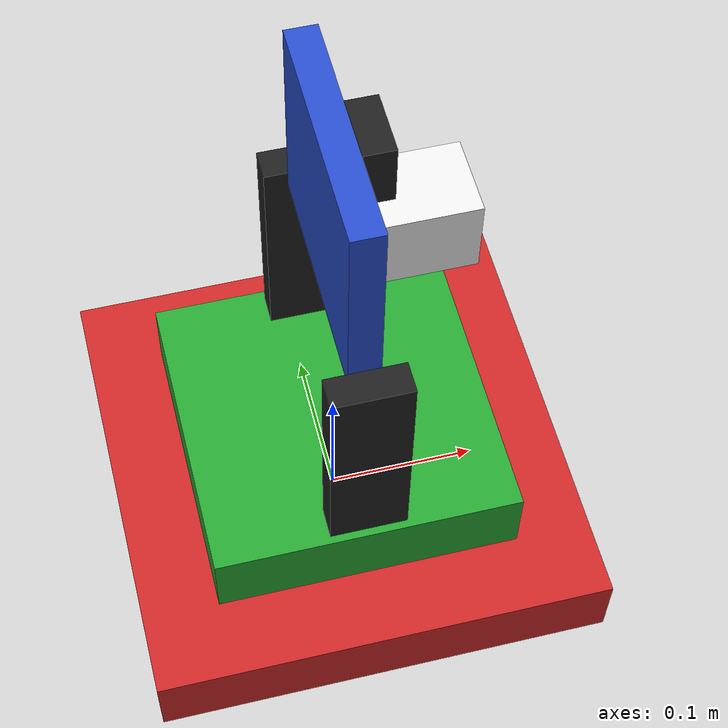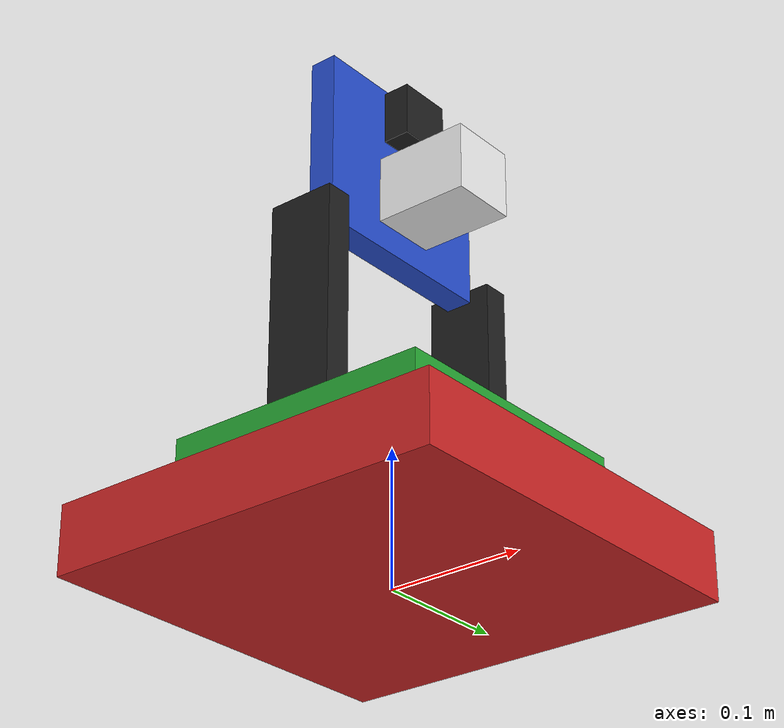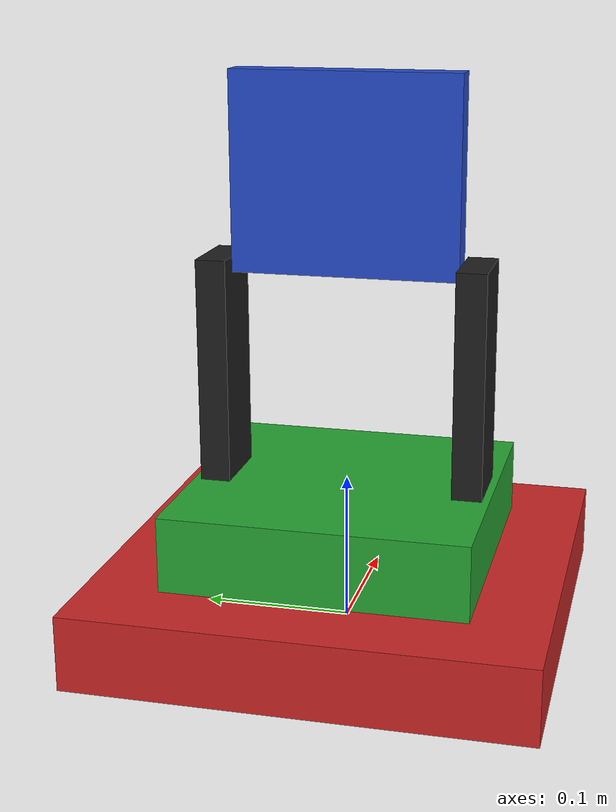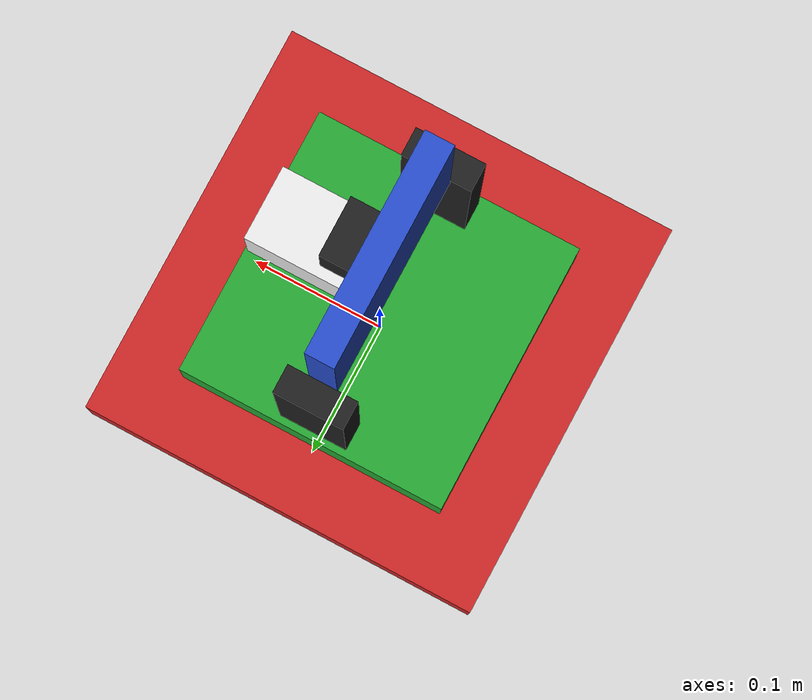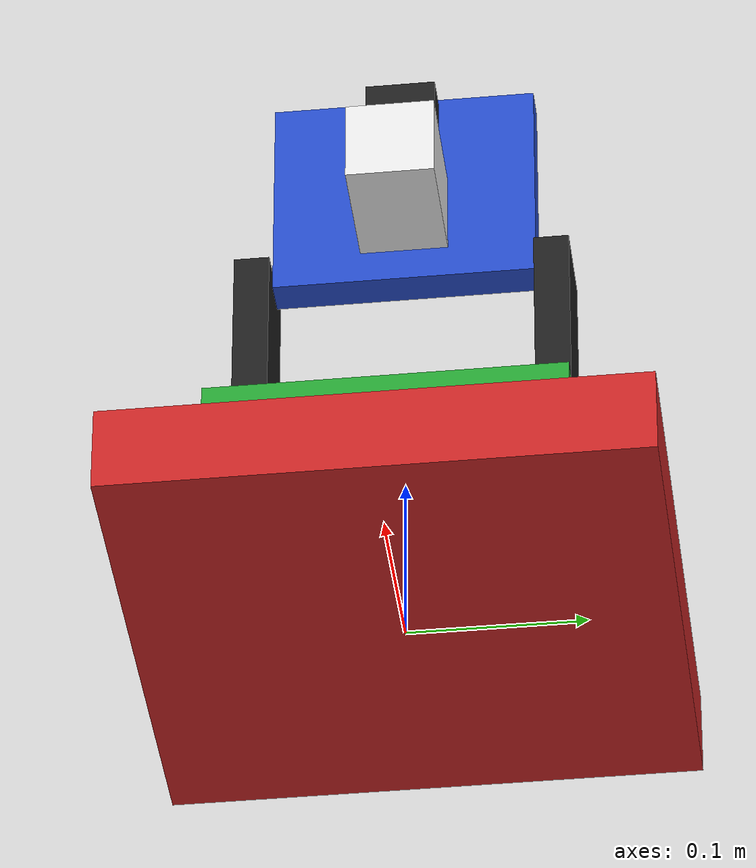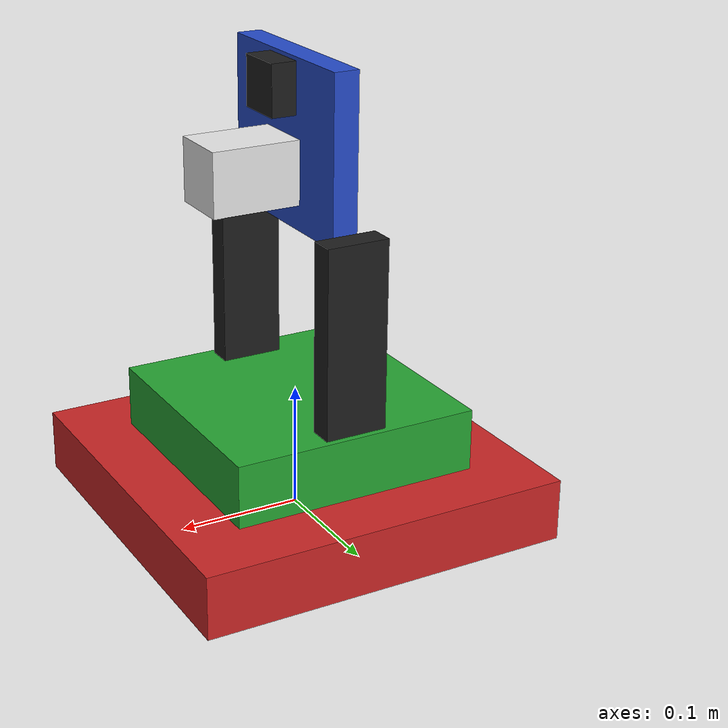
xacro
<?xml version="1.0"?>
<robot xmlns:xacro="http://www.ros.org/wiki/xacro">
    <!-- SPECS -->
    <xacro:property name="base_lx" value="0.3" />
    <xacro:property name="base_ly" value="0.3" />
    <xacro:property name="base_lz" value="0.05" />
    <xacro:property name="base_mass" value="0.8" />

    <xacro:property name="yaw_lx" value="0.2" />
    <xacro:property name="yaw_ly" value="0.2" />
    <xacro:property name="yaw_lz" value="0.05" />
    <xacro:property name="yaw_mass" value="0.2" />

    <xacro:property name="stand_lx" value="0.05" />
    <xacro:property name="stand_ly" value="0.02" />
    <xacro:property name="stand_lz" value="0.15" />
    <xacro:property name="stand_mass" value="0.1" />

    <xacro:property name="pitch_lx" value="0.02" />
    <xacro:property name="pitch_ly" value="0.15" />
    <xacro:property name="pitch_lz" value="0.13" />
    <xacro:property name="pitch_mass" value="0.1" />

    <xacro:property name="muzzle_lx" value="0.07" />
    <xacro:property name="muzzle_ly" value="0.05" />
    <xacro:property name="muzzle_lz" value="0.05" />
    <xacro:property name="muzzle_mass" value="0.02" />

    <xacro:property name="camera_lx" value="0.02" />
    <xacro:property name="camera_ly" value="0.04" />
    <xacro:property name="camera_lz" value="0.04" />
    <!-- END_SPECS -->

    <link name="footprint" />

    <link name="base_link">

        <visual>
            <origin xyz="0 0 0" rpy="0 0 0" />
            <geometry>
                <box size="${base_lx} ${base_ly} ${base_lz}" />
            </geometry>
            <material name="red" />
        </visual>

        <collision>
            <origin xyz="0 0 0" rpy="0 0 0" />
            <geometry>
                <box size="${base_lx} ${base_ly} ${base_lz}" />
            </geometry>
        </collision>

        <xacro:box_inertial m="${base_mass}" lx="${base_lx}" ly="${base_ly}" lz="${base_lz}"
            o_xyz="0 0 0" o_rpy="0 0 0" />

    </link>

    <joint name="base_footprint_joint" type="fixed">
        <origin xyz="0 0 ${base_lz / 2}" rpy="0 0 0" />
        <parent link="footprint" />
        <child link="base_link" />
    </joint>

    <link name="yaw_link">

        <visual>
            <origin xyz="0 0 ${yaw_lz / 2}" rpy="0 0 0" />
            <geometry>
                <box size="${yaw_lx} ${yaw_ly} ${yaw_lz}" />
            </geometry>
            <material name="green" />
        </visual>

        <collision>
            <origin xyz="0 0 ${yaw_lz / 2}" rpy="0 0 0" />
            <geometry>
                <box size="${yaw_lx} ${yaw_ly} ${yaw_lz}" />
            </geometry>
        </collision>

        <xacro:box_inertial m="${yaw_mass}" lx="${yaw_lx}" ly="${yaw_ly}" lz="${yaw_lz}"
            o_xyz="0 0 ${yaw_lz / 2}" o_rpy="0 0 0" />

    </link>

    <joint name="yaw_base_joint" type="continuous">
        <origin xyz="0 0 ${base_lz / 2}" rpy="0 0 0" />
        <parent link="base_link" />
        <child link="yaw_link" />
        <axis xyz="0 0 1" />
        <limit effort="30" velocity="${pi}" /> <!-- Nema 17 motor
        have holding toruqe of 0.3 N*m-->
    </joint>

    <!-- Stand -->
    <link name="lstand_link">

        <visual>
            <origin xyz="0 0 ${stand_lz / 2}" rpy="0 0 0" />
            <geometry>
                <box size="${stand_lx} ${stand_ly} ${stand_lz}" />
            </geometry>
            <material name="black" />
        </visual>

        <collision>
            <origin xyz="0 0 ${stand_lz / 2}" rpy="0 0 0" />
            <geometry>
                <box size="${stand_lx} ${stand_ly} ${stand_lz}" />
            </geometry>
        </collision>

        <xacro:box_inertial m="${stand_mass}" lx="${stand_lx}" ly="${stand_ly}" lz="${stand_lz}"
            o_xyz="0 0 ${stand_lz / 2}" o_rpy="0 0 0" />

    </link>

    <joint name="lstand_yaw_joint" type="fixed">
        <origin xyz="0 ${(pitch_ly + stand_ly) / 2} ${yaw_lz}" rpy="0 0 0" />
        <parent link="yaw_link" />
        <child link="lstand_link" />
    </joint>

    <link name="rstand_link">

        <visual>
            <origin xyz="0 0 ${stand_lz / 2}" rpy="0 0 0" />
            <geometry>
                <box size="${stand_lx} ${stand_ly} ${stand_lz}" />
            </geometry>
            <material name="black" />
        </visual>

        <collision>
            <origin xyz="0 0 ${stand_lz / 2}" rpy="0 0 0" />
            <geometry>
                <box size="${stand_lx} ${stand_ly} ${stand_lz}" />
            </geometry>
        </collision>

        <xacro:box_inertial m="${stand_mass}" lx="${stand_lx}" ly="${stand_ly}" lz="${stand_lz}"
            o_xyz="0 0 ${stand_lz / 2}" o_rpy="0 0 0" />
    </link>

    <joint name="rstand_yaw_joint" type="fixed">
        <origin xyz="0 -${(pitch_ly + stand_ly) / 2} ${yaw_lz}" rpy="0 0 0" />
        <parent link="yaw_link" />
        <child link="rstand_link" />
    </joint>

    <link name="pitch_link">

        <visual>
            <origin xyz="0 0 0.02" rpy="0 0 0" />
            <geometry>
                <box size="${pitch_lx} ${pitch_ly} ${pitch_lz}" />
            </geometry>
            <material name="blue" />
        </visual>

        <collision>
            <origin xyz="0 0 0" rpy="0 0 0" />
            <geometry>
                <box size="${pitch_lx} ${pitch_ly} ${pitch_lz}" />
            </geometry>
        </collision>

        <xacro:box_inertial m="${pitch_mass}" lx="${pitch_lx}" ly="${pitch_ly}" lz="${pitch_lz}"
            o_xyz="0 0 0" o_rpy="0 0 0" />
    </link>

    <joint name="pitch_base_joint" type="revolute">
        <origin xyz="0 -${pitch_ly / 2 + stand_ly / 2} ${pitch_lz / 2 + stand_lz * 0.8}" rpy="0 0 0" />
        <parent link="lstand_link" />
        <child link="pitch_link" />
        <axis xyz="0 1 0" />
        <limit lower="${-pi/2}" upper="${pi/2}" effort="30" velocity="${pi}" /> <!-- Nema 17 motor
        have holding toruqe of 0.3 N*m-->
    </joint>

    <link name="muzzle_link">

        <visual>
            <origin xyz="0 0 0" rpy="0 0 0" />
            <geometry>
                <box size="${muzzle_lx} ${muzzle_ly} ${muzzle_lz}" />
            </geometry>
            <material name="white" />
        </visual>

    </link>

    <joint name="muzzle_pitch_joint" type="fixed">
        <origin xyz="${(pitch_lx + muzzle_lx) / 2} 0 0" rpy="0 0 0"/>
        <parent link="pitch_link"/>
        <child link="muzzle_link"/>
    </joint>

    <!-- Camera -->
    <link name="camera_link">

        <visual>
            <origin xyz="0.0 0 0" rpy="0 0 0"/>
            <geometry>
                <box size="${camera_lx} ${camera_ly} ${camera_lz}"/>
            </geometry>
            <material name="black" />
        </visual>

    </link>

    <joint name="camera_pitch_link" type="fixed">
        <origin xyz="${(pitch_lx + camera_lx) / 2} 0 ${pitch_lz - camera_lz * 1.7}" rpy="0 0 0" />
        <parent link="pitch_link" />
        <child link="camera_link" />
    </joint>

</robot>
